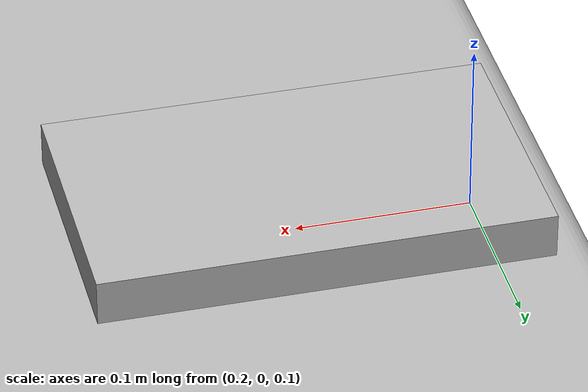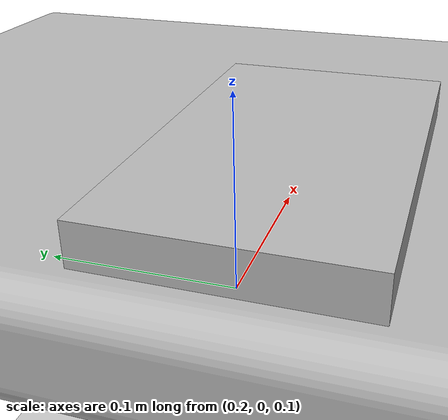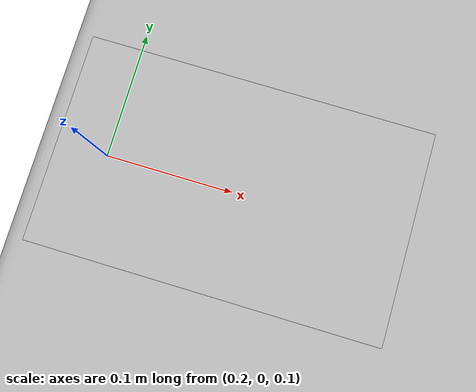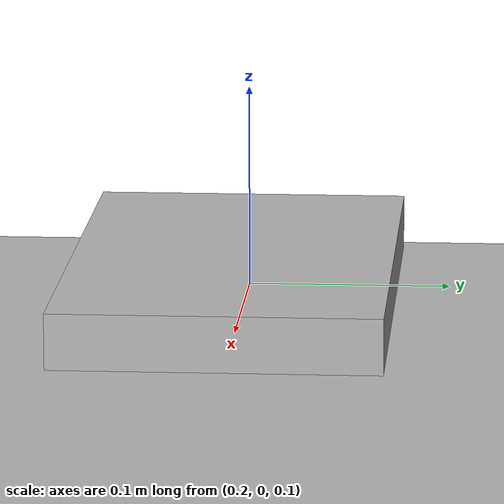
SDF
<?xml version ='1.0'?>
<sdf version ='1.4'>
  <world name='default'>
    <include>
      <uri>model://ground_plane</uri>
    </include>

    <include>
      <uri>model://sun</uri>
    </include>

    <include>
      <pose>0.4 0 0.038 0 0 0 </pose>
      <uri>model://bed</uri>
    </include>

    <include>
      <pose>0.3 0 0.110 0 0 0 </pose>
      <uri>model://pillow</uri>
    </include>

    <plugin filename="libworld_edit.so" name="world_edit"/>
  </world>
</sdf>

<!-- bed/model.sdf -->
<sdf version="1.4">
  <model name="bed">
    <static>false</static>
    <link name="link">
      <!-- Random Inertia and Mass -->
      <inertial>
        <mass>1.0</mass>
        <inertia>
          <!-- inertias are tricky to compute -->
          <!-- http://gazebosim.org/tutorials?tut=inertia&cat=build_robot -->
          <ixx>0.083</ixx> <!-- for a box: ixx = 0.083 * mass * (y*y + z*z) -->
          <ixy>0.0</ixy> <!-- for a box: ixy = 0 -->
          <ixz>0.0</ixz> <!-- for a box: ixz = 0 -->
          <iyy>0.083</iyy> <!-- for a box: iyy = 0.083 * mass * (x*x + z*z) -->
          <iyz>0.0</iyz> <!-- for a box: iyz = 0 -->
          <izz>0.083</izz> <!-- for a box: izz = 0.083 * mass * (x*x + y*y) -->
        </inertia>
      </inertial>
      <collision name="body">
        <pose>0 0 0.00 0 0 0</pose>
        <geometry>
          <mesh>
            <uri>model://bed/meshes/bed.stl</uri>
            <scale> 0.001 0.001 0.001</scale>
          </mesh>
        </geometry>
      </collision>
      <visual name="body">
        <pose>0 0 0 0 0 0</pose>
        <geometry>
          <mesh>
            <uri>model://bed/meshes/bed.stl</uri>
            <scale> 0.001 0.001 0.001</scale>
          </mesh>
        </geometry>
      </visual>

    </link>
  </model>
</sdf>

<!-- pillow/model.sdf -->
<sdf version="1.4">
  <model name="Pillow">
    <pose>0 0 0.0 0 0 0</pose>
    <static>true</static>
    <link name="link">

    <!-- Random Inertia and Mass -->
      <inertial>
        <mass>1.0</mass>
        <inertia> <!-- inertias are tricky to compute -->
          <!-- http://gazebosim.org/tutorials?tut=inertia&cat=build_robot -->
          <ixx>0.083</ixx>       <!-- for a box: ixx = 0.083 * mass * (y*y + z*z) -->
          <ixy>0.0</ixy>         <!-- for a box: ixy = 0 -->
          <ixz>0.0</ixz>         <!-- for a box: ixz = 0 -->
          <iyy>0.083</iyy>       <!-- for a box: iyy = 0.083 * mass * (x*x + z*z) -->
          <iyz>0.0</iyz>         <!-- for a box: iyz = 0 -->
          <izz>0.083</izz>       <!-- for a box: izz = 0.083 * mass * (x*x + y*y) -->
        </inertia>
      </inertial>

      <collision name="collision">
        <geometry>
          <box>
            <size>0.254 0.152 0.06</size>
          </box>
        </geometry>
      </collision>
      <visual name="visual">
        <geometry>
          <box>
            <size>0.254 0.152 0.06</size>
          </box>
        </geometry>
      </visual>
    </link>
  </model>
</sdf>
